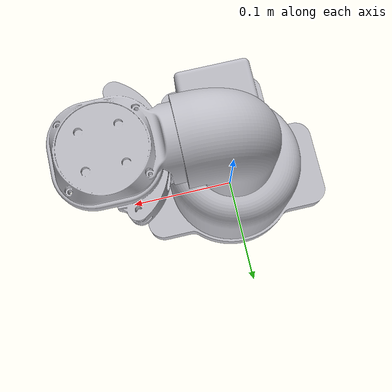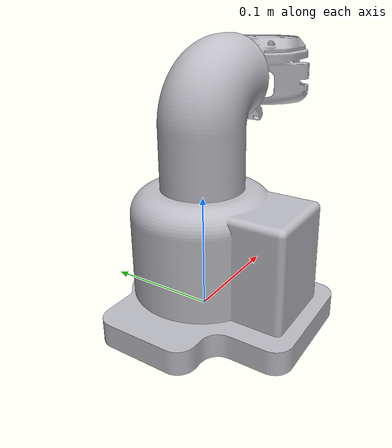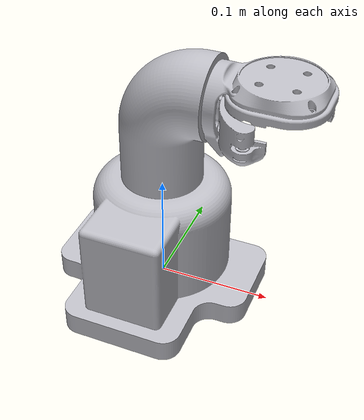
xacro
<?xml version="1.0" ?>
<robot name="Untitled" xmlns:xacro="http://www.ros.org/wiki/xacro">

<xacro:include filename="$(find Untitled_description)/urdf/materials.xacro" />
<xacro:include filename="$(find Untitled_description)/urdf/Untitled.trans" />
<xacro:include filename="$(find Untitled_description)/urdf/Untitled.gazebo" />
<link name="base_link">
  <inertial>
    <origin xyz="-1.3994637957346424e-08 -0.013751224256395767 0.04886454507234415" rpy="0 0 0"/>
    <mass value="12.899764355948896"/>
    <inertia ixx="0.033823" iyy="0.028162" izz="0.035033" ixy="0.0" iyz="-0.000755" ixz="0.0"/>
  </inertial>
  <visual>
    <origin xyz="0 0 0" rpy="0 0 0"/>
    <geometry>
      <mesh filename="file://$(find Untitled_description)/meshes/base_link.stl" scale="0.001 0.001 0.001"/>
    </geometry>
    <material name="silver"/>
  </visual>
  <collision>
    <origin xyz="0 0 0" rpy="0 0 0"/>
    <geometry>
      <mesh filename="file://$(find Untitled_description)/meshes/base_link.stl" scale="0.001 0.001 0.001"/>
    </geometry>
  </collision>
</link>

<link name="link1_1">
  <inertial>
    <origin xyz="0.006896766224730375 5.686419288763629e-16 0.055490186869056476" rpy="0 0 0"/>
    <mass value="3.4735206294395446"/>
    <inertia ixx="0.004461" iyy="0.004757" izz="0.002424" ixy="-0.0" iyz="-0.0" ixz="-0.000777"/>
  </inertial>
  <visual>
    <origin xyz="-0.0 -0.0 -0.11" rpy="0 0 0"/>
    <geometry>
      <mesh filename="file://$(find Untitled_description)/meshes/link1_1.stl" scale="0.001 0.001 0.001"/>
    </geometry>
    <material name="silver"/>
  </visual>
  <collision>
    <origin xyz="-0.0 -0.0 -0.11" rpy="0 0 0"/>
    <geometry>
      <mesh filename="file://$(find Untitled_description)/meshes/link1_1.stl" scale="0.001 0.001 0.001"/>
    </geometry>
  </collision>
</link>

<link name="gripper_base_1">
  <inertial>
    <origin xyz="0.03556644115575926 -0.0001756689512086883 0.008326791965623942" rpy="0 0 0"/>
    <mass value="0.5510952365655617"/>
    <inertia ixx="0.000508" iyy="0.00049" izz="0.000702" ixy="0.0" iyz="0.0" ixz="-0.000104"/>
  </inertial>
  <visual>
    <origin xyz="-0.045 -0.0 -0.195" rpy="0 0 0"/>
    <geometry>
      <mesh filename="file://$(find Untitled_description)/meshes/gripper_base_1.stl" scale="0.001 0.001 0.001"/>
    </geometry>
    <material name="silver"/>
  </visual>
  <collision>
    <origin xyz="-0.045 -0.0 -0.195" rpy="0 0 0"/>
    <geometry>
      <mesh filename="file://$(find Untitled_description)/meshes/gripper_base_1.stl" scale="0.001 0.001 0.001"/>
    </geometry>
  </collision>
</link>

<joint name="Revolute 1" type="revolute">
  <origin xyz="0.0 0.0 0.11" rpy="0 0 0"/>
  <parent link="base_link"/>
  <child link="link1_1"/>
  <axis xyz="0.0 0.0 1.0"/>
  <limit upper="6.283185" lower="0.0" effort="100" velocity="100"/>
</joint>

<joint name="Revolute 2" type="revolute">
  <origin xyz="0.045 0.0 0.085" rpy="0 0 0"/>
  <parent link="link1_1"/>
  <child link="gripper_base_1"/>
  <axis xyz="1.0 -0.0 0.0"/>
  <limit upper="6.283185" lower="0.0" effort="100" velocity="100"/>
</joint>

</robot>

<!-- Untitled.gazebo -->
<robot name="Untitled" xmlns:xacro="http://www.ros.org/wiki/xacro" >

<xacro:property name="body_color" value="Gazebo/Silver" />

<gazebo>
  <plugin name="control" filename="libgazebo_ros_control.so"/>
</gazebo>
<gazebo reference="base_link">
  <material>${body_color}</material>
  <mu1>0.2</mu1>
  <mu2>0.2</mu2>
  <self_collide>true</self_collide>
  <gravity>true</gravity>
</gazebo>

<gazebo reference="link1_1">
  <material>${body_color}</material>
  <mu1>0.2</mu1>
  <mu2>0.2</mu2>
  <self_collide>true</self_collide>
</gazebo>

<gazebo reference="gripper_base_1">
  <material>${body_color}</material>
  <mu1>0.2</mu1>
  <mu2>0.2</mu2>
  <self_collide>true</self_collide>
</gazebo>

</robot>
